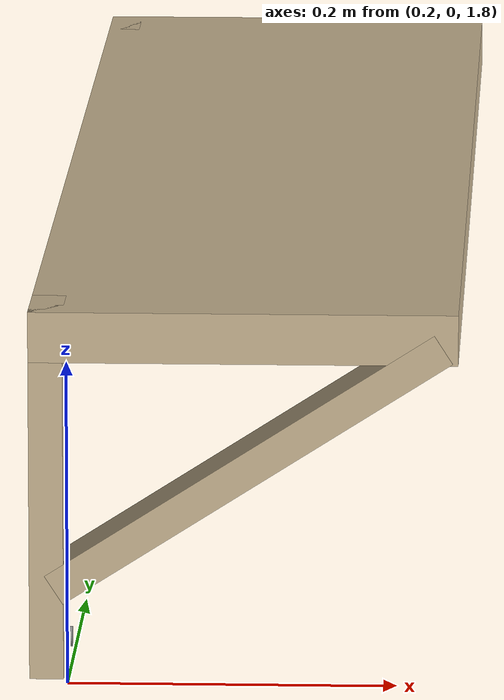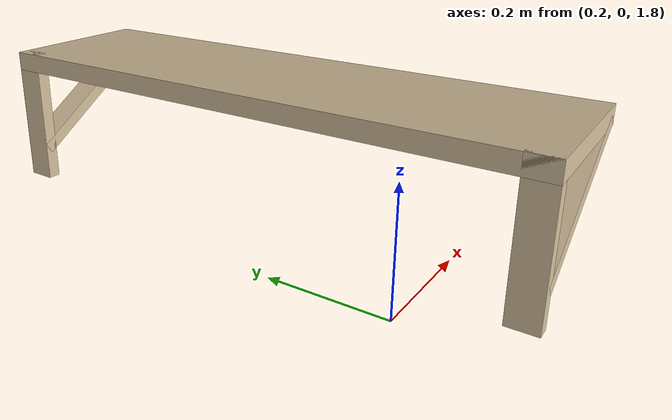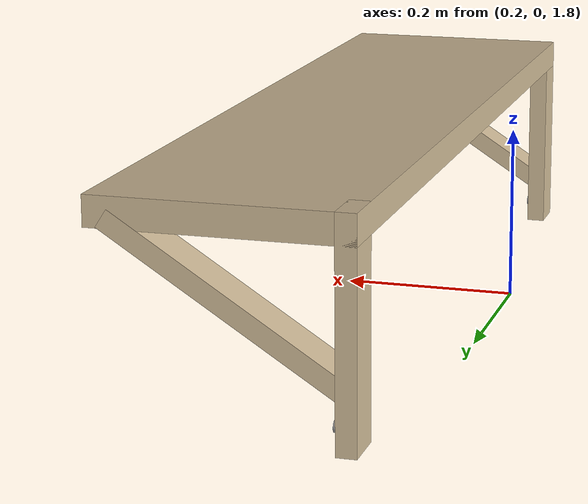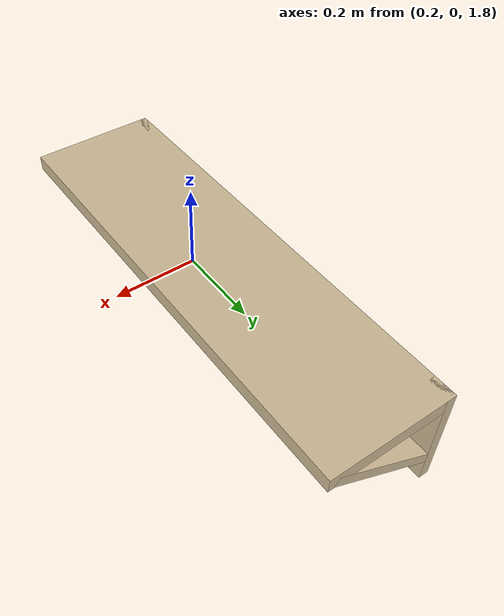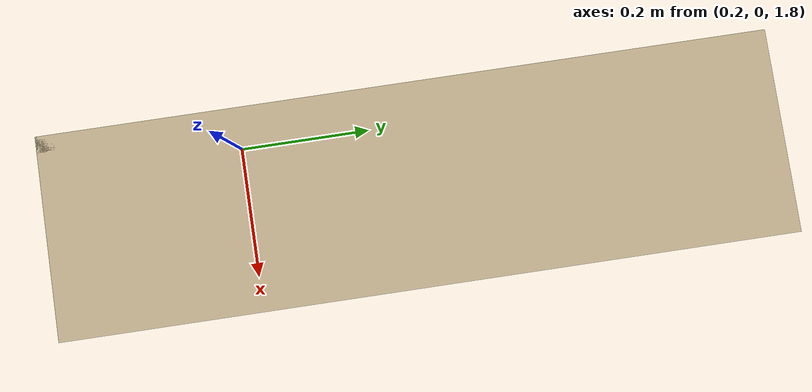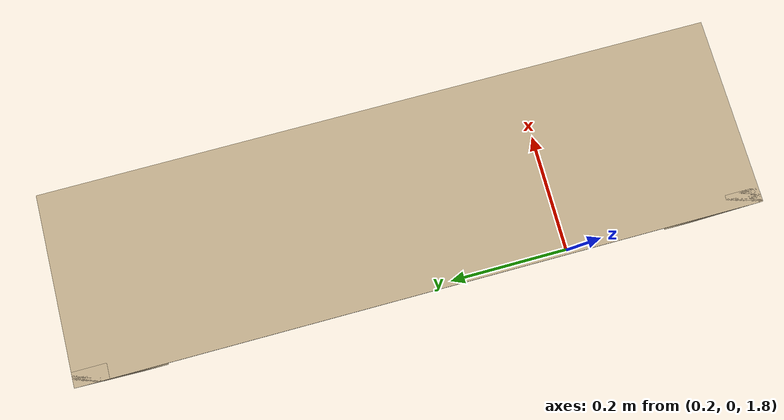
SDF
<?xml version='1.0'?>
<sdf version='1.7'>
  <model name='my_wall_shelf'>
    <link name='link_0'>
      <inertial>
        <mass>1</mass>
        <inertia>
          <ixx>0.166667</ixx>
          <ixy>0</ixy>
          <ixz>0</ixz>
          <iyy>0.166667</iyy>
          <iyz>0</iyz>
          <izz>0.166667</izz>
        </inertia>
        <pose>0 0 0 0 -0 0</pose>
      </inertial>
      <pose>0.314363 0.257975 0.059537 0 -0 0</pose>
      <gravity>1</gravity>
      <self_collide>0</self_collide>
      <kinematic>0</kinematic>
      <enable_wind>0</enable_wind>
      <visual name='visual'>
        <pose>0 0 2 0 -0 0</pose>
        <geometry>
          <box>
            <size>0.25 0.9 0.03</size>
          </box>
        </geometry>
        <material>
          <lighting>1</lighting>
          <script>
            <uri>file://media/materials/scripts/gazebo.material</uri>
            <name>Gazebo/Grey</name>
          </script>
          <shader type='pixel'>
            <normal_map>__default__</normal_map>
          </shader>
          <ambient>0.81 0.73 0.59 1</ambient>
          <diffuse>0.81 0.73 0.59 1</diffuse>
          <specular>0.01 0.01 0.01 1</specular>
          <emissive>0 0 0 1</emissive>
        </material>
        <transparency>0</transparency>
        <cast_shadows>1</cast_shadows>
      </visual>
      <collision name='collision'>
        <laser_retro>0</laser_retro>
        <max_contacts>10</max_contacts>
        <pose>0 0 2 0 -0 0</pose>
        <geometry>
          <box>
            <size>0.25 0.9 0.03</size>
          </box>
        </geometry>
        <surface>
          <friction>
            <ode>
              <mu>1</mu>
              <mu2>1</mu2>
              <fdir1>0 0 0</fdir1>
              <slip1>0</slip1>
              <slip2>0</slip2>
            </ode>
            <torsional>
              <coefficient>1</coefficient>
              <patch_radius>0</patch_radius>
              <surface_radius>0</surface_radius>
              <use_patch_radius>1</use_patch_radius>
              <ode>
                <slip>0</slip>
              </ode>
            </torsional>
          </friction>
          <bounce>
            <restitution_coefficient>0</restitution_coefficient>
            <threshold>1e+06</threshold>
          </bounce>
          <contact>
            <collide_without_contact>0</collide_without_contact>
            <collide_without_contact_bitmask>1</collide_without_contact_bitmask>
            <collide_bitmask>1</collide_bitmask>
            <ode>
              <soft_cfm>0</soft_cfm>
              <soft_erp>0.2</soft_erp>
              <kp>1e+13</kp>
              <kd>1</kd>
              <max_vel>0.01</max_vel>
              <min_depth>0</min_depth>
            </ode>
            <bullet>
              <split_impulse>1</split_impulse>
              <split_impulse_penetration_threshold>-0.01</split_impulse_penetration_threshold>
              <soft_cfm>0</soft_cfm>
              <soft_erp>0.2</soft_erp>
              <kp>1e+13</kp>
              <kd>1</kd>
            </bullet>
          </contact>
        </surface>
      </collision>
    </link>
    <link name='link_1'>
      <inertial>
        <mass>1</mass>
        <inertia>
          <ixx>0.166667</ixx>
          <ixy>0</ixy>
          <ixz>0</ixz>
          <iyy>0.166667</iyy>
          <iyz>0</iyz>
          <izz>0.166667</izz>
        </inertia>
        <pose>0 0 0 0 -0 0</pose>
      </inertial>
      <pose>0.199363 -0.169525 -0.035463 0 -0 0</pose>
      <gravity>1</gravity>
      <self_collide>0</self_collide>
      <kinematic>0</kinematic>
      <enable_wind>0</enable_wind>
      <visual name='visual'>
        <pose>0 0 2 0 -0 0</pose>
        <geometry>
          <box>
            <size>0.02 0.045 0.22</size>
          </box>
        </geometry>
        <material>
          <lighting>1</lighting>
          <script>
            <uri>file://media/materials/scripts/gazebo.material</uri>
            <name>Gazebo/Grey</name>
          </script>
          <shader type='pixel'>
            <normal_map>__default__</normal_map>
          </shader>
          <ambient>0.81 0.73 0.59 1</ambient>
          <diffuse>0.81 0.73 0.59 1</diffuse>
          <specular>0.01 0.01 0.01 1</specular>
          <emissive>0 0 0 1</emissive>
        </material>
        <transparency>0</transparency>
        <cast_shadows>1</cast_shadows>
      </visual>
      <collision name='collision'>
        <laser_retro>0</laser_retro>
        <max_contacts>10</max_contacts>
        <pose>0 0 2 0 -0 0</pose>
        <geometry>
          <box>
            <size>0.02 0.044 0.22</size>
          </box>
        </geometry>
        <surface>
          <friction>
            <ode>
              <mu>1</mu>
              <mu2>1</mu2>
              <fdir1>0 0 0</fdir1>
              <slip1>0</slip1>
              <slip2>0</slip2>
            </ode>
            <torsional>
              <coefficient>1</coefficient>
              <patch_radius>0</patch_radius>
              <surface_radius>0</surface_radius>
              <use_patch_radius>1</use_patch_radius>
              <ode>
                <slip>0</slip>
              </ode>
            </torsional>
          </friction>
          <bounce>
            <restitution_coefficient>0</restitution_coefficient>
            <threshold>1e+06</threshold>
          </bounce>
          <contact>
            <collide_without_contact>0</collide_without_contact>
            <collide_without_contact_bitmask>1</collide_without_contact_bitmask>
            <collide_bitmask>1</collide_bitmask>
            <ode>
              <soft_cfm>0</soft_cfm>
              <soft_erp>0.2</soft_erp>
              <kp>1e+13</kp>
              <kd>1</kd>
              <max_vel>0.01</max_vel>
              <min_depth>0</min_depth>
            </ode>
            <bullet>
              <split_impulse>1</split_impulse>
              <split_impulse_penetration_threshold>-0.01</split_impulse_penetration_threshold>
              <soft_cfm>0</soft_cfm>
              <soft_erp>0.2</soft_erp>
              <kp>1e+13</kp>
              <kd>1</kd>
            </bullet>
          </contact>
        </surface>
      </collision>
    </link>
    <link name='link_1_clone'>
      <inertial>
        <mass>1</mass>
        <inertia>
          <ixx>0.166667</ixx>
          <ixy>0</ixy>
          <ixz>0</ixz>
          <iyy>0.166667</iyy>
          <iyz>0</iyz>
          <izz>0.166667</izz>
        </inertia>
        <pose>0 0 0 0 -0 0</pose>
      </inertial>
      <pose>0.199364 0.685475 -0.035463 0 -0 0</pose>
      <gravity>1</gravity>
      <self_collide>0</self_collide>
      <kinematic>0</kinematic>
      <enable_wind>0</enable_wind>
      <visual name='visual'>
        <pose>0 0 2 0 -0 0</pose>
        <geometry>
          <box>
            <size>0.02 0.045 0.22</size>
          </box>
        </geometry>
        <material>
          <lighting>1</lighting>
          <script>
            <uri>file://media/materials/scripts/gazebo.material</uri>
            <name>Gazebo/Grey</name>
          </script>
          <shader type='pixel'>
            <normal_map>__default__</normal_map>
          </shader>
          <ambient>0.81 0.73 0.59 1</ambient>
          <diffuse>0.81 0.73 0.59 1</diffuse>
          <specular>0.01 0.01 0.01 1</specular>
          <emissive>0 0 0 1</emissive>
        </material>
        <transparency>0</transparency>
        <cast_shadows>1</cast_shadows>
      </visual>
      <collision name='collision'>
        <laser_retro>0</laser_retro>
        <max_contacts>10</max_contacts>
        <pose>0 0 2 0 -0 0</pose>
        <geometry>
          <box>
            <size>0.02 0.044 0.22</size>
          </box>
        </geometry>
        <surface>
          <friction>
            <ode>
              <mu>1</mu>
              <mu2>1</mu2>
              <fdir1>0 0 0</fdir1>
              <slip1>0</slip1>
              <slip2>0</slip2>
            </ode>
            <torsional>
              <coefficient>1</coefficient>
              <patch_radius>0</patch_radius>
              <surface_radius>0</surface_radius>
              <use_patch_radius>1</use_patch_radius>
              <ode>
                <slip>0</slip>
              </ode>
            </torsional>
          </friction>
          <bounce>
            <restitution_coefficient>0</restitution_coefficient>
            <threshold>1e+06</threshold>
          </bounce>
          <contact>
            <collide_without_contact>0</collide_without_contact>
            <collide_without_contact_bitmask>1</collide_without_contact_bitmask>
            <collide_bitmask>1</collide_bitmask>
            <ode>
              <soft_cfm>0</soft_cfm>
              <soft_erp>0.2</soft_erp>
              <kp>1e+13</kp>
              <kd>1</kd>
              <max_vel>0.01</max_vel>
              <min_depth>0</min_depth>
            </ode>
            <bullet>
              <split_impulse>1</split_impulse>
              <split_impulse_penetration_threshold>-0.01</split_impulse_penetration_threshold>
              <soft_cfm>0</soft_cfm>
              <soft_erp>0.2</soft_erp>
              <kp>1e+13</kp>
              <kd>1</kd>
            </bullet>
          </contact>
        </surface>
      </collision>
    </link>
    <link name='link_1_clone_0'>
      <inertial>
        <mass>1</mass>
        <inertia>
          <ixx>0.166667</ixx>
          <ixy>0</ixy>
          <ixz>0</ixz>
          <iyy>0.166667</iyy>
          <iyz>0</iyz>
          <izz>0.166667</izz>
        </inertia>
        <pose>0 0 0 0 -0 0</pose>
      </inertial>
      <pose>0.317296 -0.16953 -0.018988 0 -0 0</pose>
      <gravity>1</gravity>
      <self_collide>0</self_collide>
      <kinematic>0</kinematic>
      <enable_wind>0</enable_wind>
      <visual name='visual'>
        <pose>0 0 2 0 1 0</pose>
        <geometry>
          <box>
            <size>0.02 0.045 0.27</size>
          </box>
        </geometry>
        <material>
          <lighting>1</lighting>
          <script>
            <uri>file://media/materials/scripts/gazebo.material</uri>
            <name>Gazebo/Grey</name>
          </script>
          <shader type='pixel'>
            <normal_map>__default__</normal_map>
          </shader>
          <ambient>0.8 0.73 0.59 1</ambient>
          <diffuse>0.81 0.73 0.59 1</diffuse>
          <specular>0.01 0.01 0.01 1</specular>
          <emissive>0 0 0 1</emissive>
        </material>
        <transparency>0</transparency>
        <cast_shadows>1</cast_shadows>
      </visual>
      <collision name='collision'>
        <laser_retro>0</laser_retro>
        <max_contacts>10</max_contacts>
        <pose>0 0 2 0 1 0</pose>
        <geometry>
          <box>
            <size>0.02 0.044 0.27</size>
          </box>
        </geometry>
        <surface>
          <friction>
            <ode>
              <mu>1</mu>
              <mu2>1</mu2>
              <fdir1>0 0 0</fdir1>
              <slip1>0</slip1>
              <slip2>0</slip2>
            </ode>
            <torsional>
              <coefficient>1</coefficient>
              <patch_radius>0</patch_radius>
              <surface_radius>0</surface_radius>
              <use_patch_radius>1</use_patch_radius>
              <ode>
                <slip>0</slip>
              </ode>
            </torsional>
          </friction>
          <bounce>
            <restitution_coefficient>0</restitution_coefficient>
            <threshold>1e+06</threshold>
          </bounce>
          <contact>
            <collide_without_contact>0</collide_without_contact>
            <collide_without_contact_bitmask>1</collide_without_contact_bitmask>
            <collide_bitmask>1</collide_bitmask>
            <ode>
              <soft_cfm>0</soft_cfm>
              <soft_erp>0.2</soft_erp>
              <kp>1e+13</kp>
              <kd>1</kd>
              <max_vel>0.01</max_vel>
              <min_depth>0</min_depth>
            </ode>
            <bullet>
              <split_impulse>1</split_impulse>
              <split_impulse_penetration_threshold>-0.01</split_impulse_penetration_threshold>
              <soft_cfm>0</soft_cfm>
              <soft_erp>0.2</soft_erp>
              <kp>1e+13</kp>
              <kd>1</kd>
            </bullet>
          </contact>
        </surface>
      </collision>
    </link>
    <link name='link_1_clone_0_clone'>
      <inertial>
        <mass>1</mass>
        <inertia>
          <ixx>0.166667</ixx>
          <ixy>0</ixy>
          <ixz>0</ixz>
          <iyy>0.166667</iyy>
          <iyz>0</iyz>
          <izz>0.166667</izz>
        </inertia>
        <pose>0 0 0 0 -0 0</pose>
      </inertial>
      <pose>0.308365 0.685475 -0.018988 0 -0 0</pose>
      <gravity>1</gravity>
      <self_collide>0</self_collide>
      <kinematic>0</kinematic>
      <enable_wind>0</enable_wind>
      <visual name='visual'>
        <pose>0 0 2 0 1 0</pose>
        <geometry>
          <box>
            <size>0.02 0.045 0.27</size>
          </box>
        </geometry>
        <material>
          <lighting>1</lighting>
          <script>
            <uri>file://media/materials/scripts/gazebo.material</uri>
            <name>Gazebo/Grey</name>
          </script>
          <shader type='pixel'>
            <normal_map>__default__</normal_map>
          </shader>
          <ambient>0.81 0.73 0.59 1</ambient>
          <diffuse>0.81 0.73 0.59 1</diffuse>
          <specular>0.01 0.01 0.01 1</specular>
          <emissive>0 0 0 1</emissive>
        </material>
        <transparency>0</transparency>
        <cast_shadows>1</cast_shadows>
      </visual>
      <collision name='collision'>
        <laser_retro>0</laser_retro>
        <max_contacts>10</max_contacts>
        <pose>0 0 2 0 1 0</pose>
        <geometry>
          <box>
            <size>0.02 0.044 0.27</size>
          </box>
        </geometry>
        <surface>
          <friction>
            <ode>
              <mu>1</mu>
              <mu2>1</mu2>
              <fdir1>0 0 0</fdir1>
              <slip1>0</slip1>
              <slip2>0</slip2>
            </ode>
            <torsional>
              <coefficient>1</coefficient>
              <patch_radius>0</patch_radius>
              <surface_radius>0</surface_radius>
              <use_patch_radius>1</use_patch_radius>
              <ode>
                <slip>0</slip>
              </ode>
            </torsional>
          </friction>
          <bounce>
            <restitution_coefficient>0</restitution_coefficient>
            <threshold>1e+06</threshold>
          </bounce>
          <contact>
            <collide_without_contact>0</collide_without_contact>
            <collide_without_contact_bitmask>1</collide_without_contact_bitmask>
            <collide_bitmask>1</collide_bitmask>
            <ode>
              <soft_cfm>0</soft_cfm>
              <soft_erp>0.2</soft_erp>
              <kp>1e+13</kp>
              <kd>1</kd>
              <max_vel>0.01</max_vel>
              <min_depth>0</min_depth>
            </ode>
            <bullet>
              <split_impulse>1</split_impulse>
              <split_impulse_penetration_threshold>-0.01</split_impulse_penetration_threshold>
              <soft_cfm>0</soft_cfm>
              <soft_erp>0.2</soft_erp>
              <kp>1e+13</kp>
              <kd>1</kd>
            </bullet>
          </contact>
        </surface>
      </collision>
    </link>
    <link name='link_2'>
      <inertial>
        <mass>1</mass>
        <inertia>
          <ixx>0.145833</ixx>
          <ixy>0</ixy>
          <ixz>0</ixz>
          <iyy>0.145833</iyy>
          <iyz>0</iyz>
          <izz>0.125</izz>
        </inertia>
        <pose>0 0 0 0 -0 0</pose>
      </inertial>
      <pose>0.206647 0.683855 -0.125468 0 -0 0</pose>
      <gravity>1</gravity>
      <self_collide>0</self_collide>
      <kinematic>0</kinematic>
      <enable_wind>0</enable_wind>
      <visual name='visual'>
        <pose>0 0 2 0 1.5707 0</pose>
        <geometry>
          <cylinder>
            <radius>0.006</radius>
            <length>0.02</length>
          </cylinder>
        </geometry>
        <material>
          <lighting>1</lighting>
          <script>
            <uri>file://media/materials/scripts/gazebo.material</uri>
            <name>Gazebo/Grey</name>
          </script>
          <shader type='pixel'>
            <normal_map>__default__</normal_map>
          </shader>
          <ambient>0.86 0.86 0.86 1</ambient>
          <diffuse>0.86 0.86 0.86 1</diffuse>
          <specular>0.01 0.01 0.01 1</specular>
          <emissive>0 0 0 1</emissive>
        </material>
        <transparency>0</transparency>
        <cast_shadows>1</cast_shadows>
      </visual>
      <collision name='collision'>
        <laser_retro>0</laser_retro>
        <max_contacts>10</max_contacts>
        <pose>0 0 2 0 1.5707 0</pose>
        <geometry>
          <cylinder>
            <radius>0.006</radius>
            <length>0.02</length>
          </cylinder>
        </geometry>
        <surface>
          <friction>
            <ode>
              <mu>1</mu>
              <mu2>1</mu2>
              <fdir1>0 0 0</fdir1>
              <slip1>0</slip1>
              <slip2>0</slip2>
            </ode>
            <torsional>
              <coefficient>1</coefficient>
              <patch_radius>0</patch_radius>
              <surface_radius>0</surface_radius>
              <use_patch_radius>1</use_patch_radius>
              <ode>
                <slip>0</slip>
              </ode>
            </torsional>
          </friction>
          <bounce>
            <restitution_coefficient>0</restitution_coefficient>
            <threshold>1e+06</threshold>
          </bounce>
          <contact>
            <collide_without_contact>0</collide_without_contact>
            <collide_without_contact_bitmask>1</collide_without_contact_bitmask>
            <collide_bitmask>1</collide_bitmask>
            <ode>
              <soft_cfm>0</soft_cfm>
              <soft_erp>0.2</soft_erp>
              <kp>1e+13</kp>
              <kd>1</kd>
              <max_vel>0.01</max_vel>
              <min_depth>0</min_depth>
            </ode>
            <bullet>
              <split_impulse>1</split_impulse>
              <split_impulse_penetration_threshold>-0.01</split_impulse_penetration_threshold>
              <soft_cfm>0</soft_cfm>
              <soft_erp>0.2</soft_erp>
              <kp>1e+13</kp>
              <kd>1</kd>
            </bullet>
          </contact>
        </surface>
      </collision>
    </link>
    <link name='link_2_clone'>
      <inertial>
        <mass>1</mass>
        <inertia>
          <ixx>0.145833</ixx>
          <ixy>0</ixy>
          <ixz>0</ixz>
          <iyy>0.145833</iyy>
          <iyz>0</iyz>
          <izz>0.125</izz>
        </inertia>
        <pose>0 0 0 0 -0 0</pose>
      </inertial>
      <pose>0.203478 -0.169266 -0.125468 0 -0 0</pose>
      <gravity>1</gravity>
      <self_collide>0</self_collide>
      <kinematic>0</kinematic>
      <enable_wind>0</enable_wind>
      <visual name='visual'>
        <pose>0 0 2 0 1.5707 0</pose>
        <geometry>
          <cylinder>
            <radius>0.006</radius>
            <length>0.02</length>
          </cylinder>
        </geometry>
        <material>
          <lighting>1</lighting>
          <script>
            <uri>file://media/materials/scripts/gazebo.material</uri>
            <name>Gazebo/Grey</name>
          </script>
          <shader type='pixel'>
            <normal_map>__default__</normal_map>
          </shader>
          <ambient>0.86 0.86 0.86 1</ambient>
          <diffuse>0.86 0.86 0.86 1</diffuse>
          <specular>0.01 0.01 0.01 1</specular>
          <emissive>0 0 0 1</emissive>
        </material>
        <transparency>0</transparency>
        <cast_shadows>1</cast_shadows>
      </visual>
      <collision name='collision'>
        <laser_retro>0</laser_retro>
        <max_contacts>10</max_contacts>
        <pose>0 0 2 0 1.5707 0</pose>
        <geometry>
          <cylinder>
            <radius>0.006</radius>
            <length>0.02</length>
          </cylinder>
        </geometry>
        <surface>
          <friction>
            <ode>
              <mu>1</mu>
              <mu2>1</mu2>
              <fdir1>0 0 0</fdir1>
              <slip1>0</slip1>
              <slip2>0</slip2>
            </ode>
            <torsional>
              <coefficient>1</coefficient>
              <patch_radius>0</patch_radius>
              <surface_radius>0</surface_radius>
              <use_patch_radius>1</use_patch_radius>
              <ode>
                <slip>0</slip>
              </ode>
            </torsional>
          </friction>
          <bounce>
            <restitution_coefficient>0</restitution_coefficient>
            <threshold>1e+06</threshold>
          </bounce>
          <contact>
            <collide_without_contact>0</collide_without_contact>
            <collide_without_contact_bitmask>1</collide_without_contact_bitmask>
            <collide_bitmask>1</collide_bitmask>
            <ode>
              <soft_cfm>0</soft_cfm>
              <soft_erp>0.2</soft_erp>
              <kp>1e+13</kp>
              <kd>1</kd>
              <max_vel>0.01</max_vel>
              <min_depth>0</min_depth>
            </ode>
            <bullet>
              <split_impulse>1</split_impulse>
              <split_impulse_penetration_threshold>-0.01</split_impulse_penetration_threshold>
              <soft_cfm>0</soft_cfm>
              <soft_erp>0.2</soft_erp>
              <kp>1e+13</kp>
              <kd>1</kd>
            </bullet>
          </contact>
        </surface>
      </collision>
    </link>
    <static>1</static>
    <allow_auto_disable>1</allow_auto_disable>
  </model>
</sdf>
